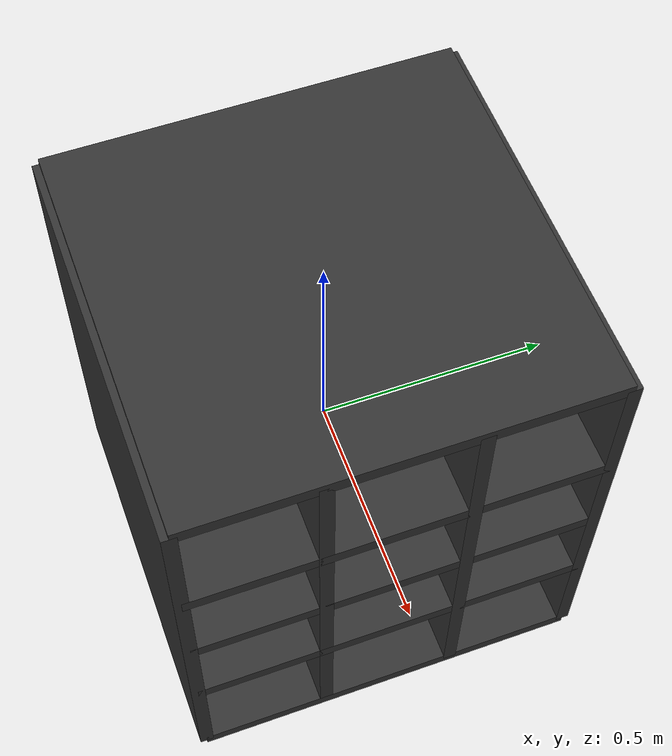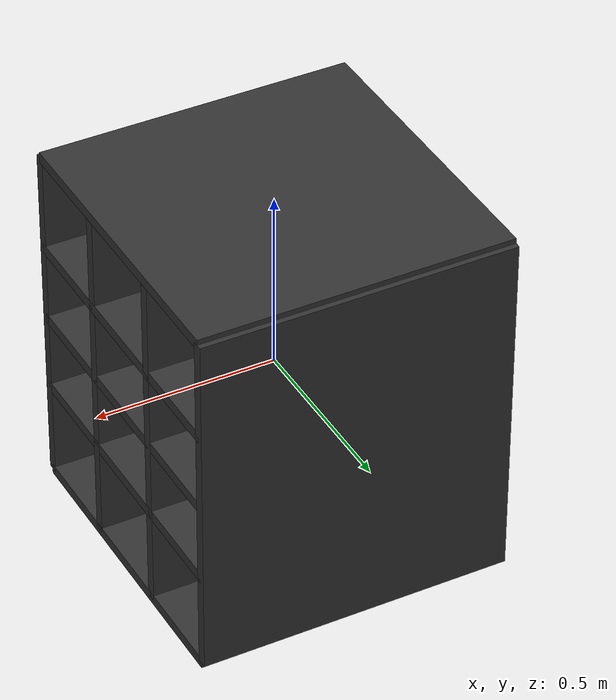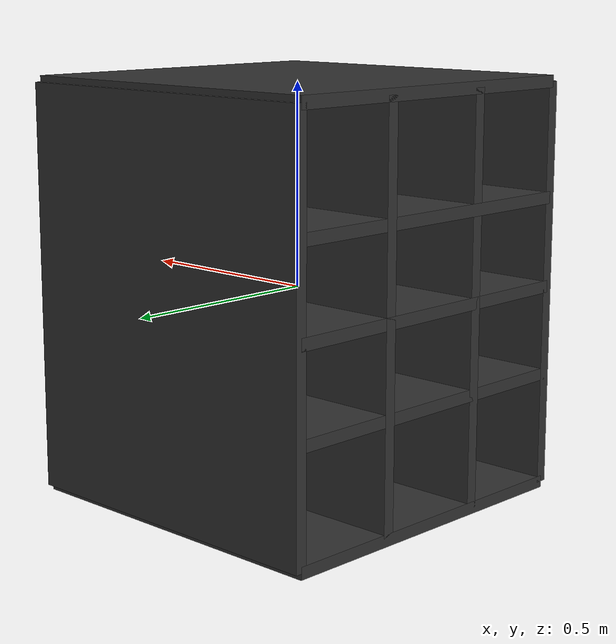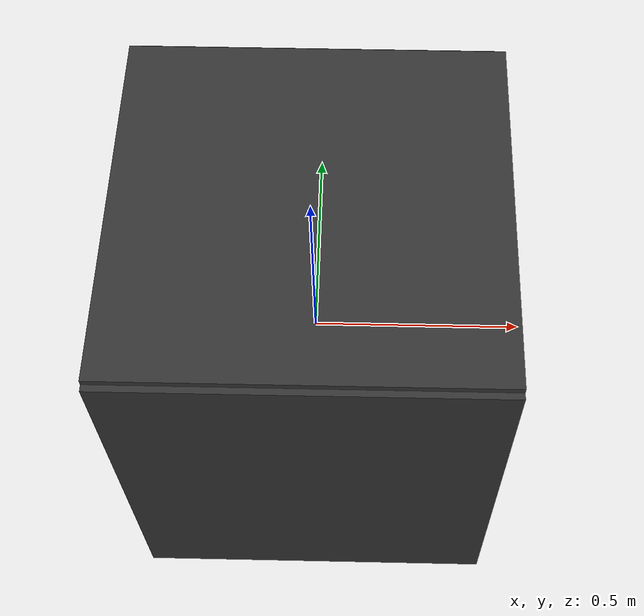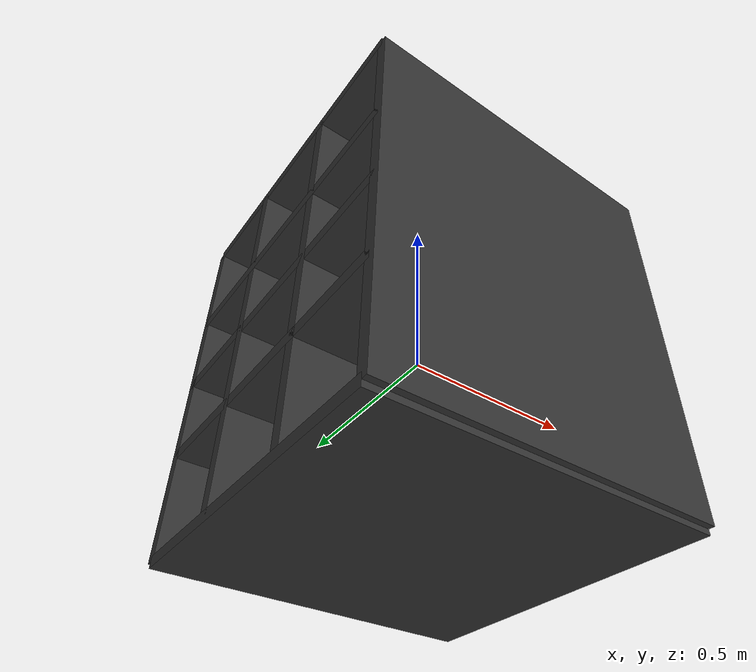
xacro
<?xml version="1.0"?>
<robot xmlns:xacro="http://ros.org/wiki/xacro" name="kiva_pod">

  <xacro:property name="x_size" value=".865" />
  <xacro:property name="y_size" value=".865" />
  <xacro:property name="z_size" value="1." />
  <xacro:property name="x_part_size" value="      .03 ${y_size} ${z_size}" />
  <xacro:property name="y_part_size" value="${x_size}       .03 ${z_size}" />
  <xacro:property name="z_part_size" value="${x_size} ${y_size}      .03" />

  <!-- y middle -->
  <link name="kiva_pod_base">  <!-- x_part0 -->
    <visual>
      <origin rpy="0 0 0" xyz="0 0 0"/>
      <geometry><box size="${x_part_size}"/></geometry>
      <material name="darkgray"><color rgba=".2 .2 .2 1"/></material>
    </visual>
    <collision>
      <origin rpy="0 0 0" xyz="0 0 0"/>
      <geometry><box size="${x_part_size}"/></geometry>
    </collision>
  </link>

  <!-- z bottom -->
  <joint name="base_to_z_part0" type="fixed">
    <parent link="kiva_pod_base"/>
    <child link="kiva_pod_z_part0"/>
  </joint>
  <link name="kiva_pod_z_part0">
    <visual>
      <origin rpy="0 0 0" xyz="0 0 ${-z_size/2}"/>
      <geometry><box size="${z_part_size}"/></geometry>
      <material name="darkgray"><color rgba=".2 .2 .2 1"/></material>
    </visual>
    <collision>
      <origin rpy="0 0 0" xyz="0 0 ${-z_size/2}"/>
      <geometry><box size="${z_part_size}"/></geometry>
    </collision>
  </link>

  <joint name="base_to_z_part1" type="fixed">
    <parent link="kiva_pod_base"/>
    <child link="kiva_pod_z_part1"/>
  </joint>
  <link name="kiva_pod_z_part1">
    <visual>
      <origin rpy="0 0 0" xyz="0 0 -.22"/>
      <geometry><box size="${z_part_size}"/></geometry>
      <material name="darkgray"><color rgba=".2 .2 .2 1"/></material>
    </visual>
    <collision>
      <origin rpy="0 0 0" xyz="0 0 -.22"/>
      <geometry><box size="${z_part_size}"/></geometry>
    </collision>
  </link>

  <joint name="base_to_z_part2" type="fixed">
    <parent link="kiva_pod_base"/>
    <child link="kiva_pod_z_part2"/>
  </joint>
  <link name="kiva_pod_z_part2">
    <visual>
      <origin rpy="0 0 0" xyz="0 0 0"/>
      <geometry><box size="${z_part_size}"/></geometry>
      <material name="darkgray"><color rgba=".2 .2 .2 1"/></material>
    </visual>
    <collision>
      <origin rpy="0 0 0" xyz="0 0 0"/>
      <geometry><box size="${z_part_size}"/></geometry>
    </collision>
  </link>

  <joint name="base_to_z_part3" type="fixed">
    <parent link="kiva_pod_base"/>
    <child link="kiva_pod_z_part3"/>
  </joint>
  <link name="kiva_pod_z_part3">
    <visual>
      <origin rpy="0 0 0" xyz="0 0 .22"/>
      <geometry><box size="${z_part_size}"/></geometry>
      <material name="darkgray"><color rgba=".2 .2 .2 1"/></material>
    </visual>
    <collision>
      <origin rpy="0 0 0" xyz="0 0 .22"/>
      <geometry><box size="${z_part_size}"/></geometry>
    </collision>
  </link>

  <joint name="base_to_z_part4" type="fixed">
    <parent link="kiva_pod_base"/>
    <child link="kiva_pod_z_part4"/>
  </joint>
  <link name="kiva_pod_z_part4">
    <visual>
      <origin rpy="0 0 0" xyz="0 0 ${z_size/2}"/>
      <geometry><box size="${z_part_size}"/></geometry>
      <material name="darkgray"><color rgba=".2 .2 .2 1"/></material>
    </visual>
    <collision>
      <origin rpy="0 0 0" xyz="0 0 ${z_size/2}"/>
      <geometry><box size="${z_part_size}"/></geometry>
    </collision>
  </link>

  <!-- y positive -->
  <joint name="base_to_y_part0" type="fixed">
    <parent link="kiva_pod_base"/>
    <child link="kiva_pod_y_part0"/>
  </joint>
  <link name="kiva_pod_y_part0">
    <visual>
      <origin rpy="0 0 0" xyz="0 ${y_size/2} 0"/>
      <geometry><box size="${y_part_size}"/></geometry>
      <material name="darkgray"><color rgba=".2 .2 .2 1"/></material>
    </visual>
    <collision>
      <origin rpy="0 0 0" xyz="0 ${y_size/2} 0"/>
      <geometry><box size="${y_part_size}"/></geometry>
    </collision>
  </link>

  <joint name="base_to_y_part1" type="fixed">
    <parent link="kiva_pod_base"/>
    <child link="kiva_pod_y_part1"/>
  </joint>
  <link name="kiva_pod_y_part1">
    <visual>
      <origin rpy="0 0 0" xyz="0 0.15 0"/>
      <geometry><box size="${y_part_size}"/></geometry>
      <material name="darkgray"><color rgba=".2 .2 .2 1"/></material>
    </visual>
    <collision>
      <origin rpy="0 0 0" xyz="0 0.15 0"/>
      <geometry><box size="${y_part_size}"/></geometry>
    </collision>
  </link>

  <joint name="base_to_y_part2" type="fixed">
    <parent link="kiva_pod_base"/>
    <child link="kiva_pod_y_part2"/>
  </joint>
  <link name="kiva_pod_y_part2">
    <visual>
      <origin rpy="0 0 0" xyz="0 -.15 0"/>
      <geometry><box size="${y_part_size}"/></geometry>
      <material name="darkgray"><color rgba=".2 .2 .2 1"/></material>
    </visual>
    <collision>
      <origin rpy="0 0 0" xyz="0 -.15 0"/>
      <geometry><box size="${y_part_size}"/></geometry>
    </collision>
  </link>

  <joint name="base_to_y_part3" type="fixed">
    <parent link="kiva_pod_base"/>
    <child link="kiva_pod_y_part3"/>
  </joint>
  <link name="kiva_pod_y_part3">
    <visual>
      <origin rpy="0 0 0" xyz="0 -${y_size/2} 0"/>
      <geometry><box size="${y_part_size}"/></geometry>
      <material name="darkgray"><color rgba=".2 .2 .2 1"/></material>
    </visual>
    <collision>
      <origin rpy="0 0 0" xyz="0 -${y_size/2} 0"/>
      <geometry><box size="${y_part_size}"/></geometry>
    </collision>
  </link>

</robot>
